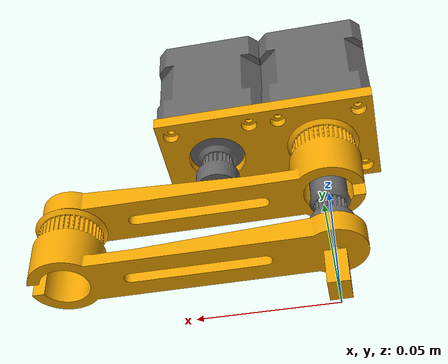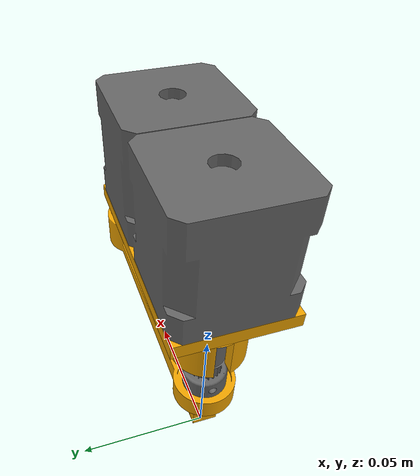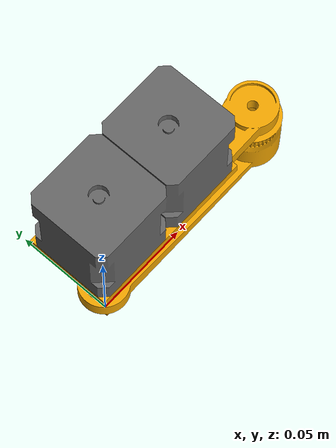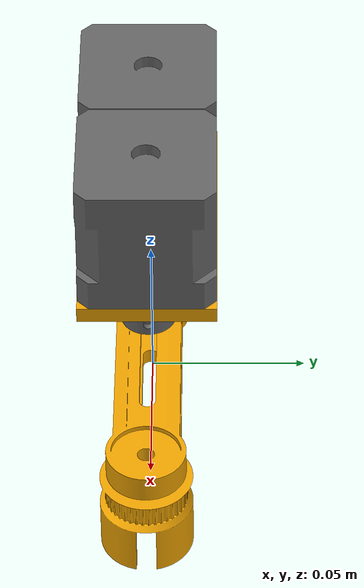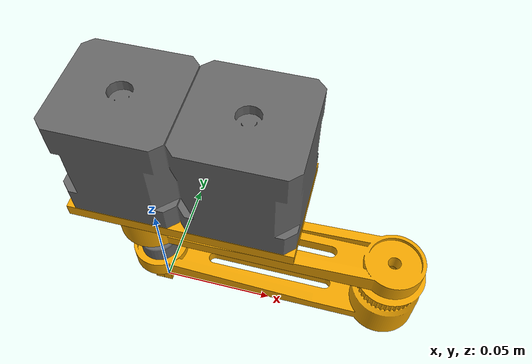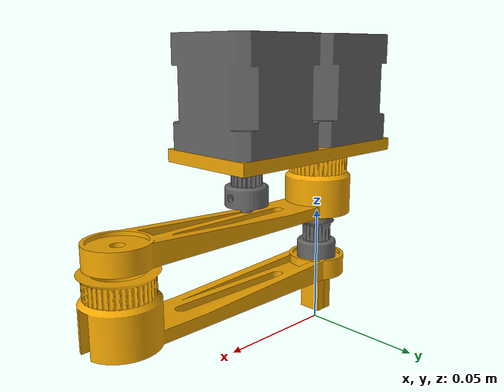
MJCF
<mujoco model="scara_arm">

    <worldbody>
        <!-- Root body with Z linear joint -->
        <body name="root" pos="0.0423 0 0.0">
            <!-- Z linear actuator joint -->
            <joint name="z_slide" type="slide" axis="0 0 2" limited="true" range="0 0.2" damping="1"/>

            <!-- Base body, moved inside root -->
            <body name="base" pos="0 0 0.08" euler="0 180 0">
                <geom type="mesh" mesh="steppers" rgba="0.4 0.4 0.4 1" contype="0" conaffinity="0"/>
                <geom type="mesh" mesh="base_stepper" rgba="0.95 0.65 0.0 1" contype="0" conaffinity="0"/>

                <!-- First arm -->
                <body name="arm1" pos="0.0423 0 0.03" euler="0 180 0">
                    <geom type="mesh" mesh="arm1" rgba="0.95 0.65 0.0 1" mass="5"/>
                    <joint name="joint1" type="hinge" axis="0 0 1" pos="0 0 0" damping="0.0001"/>

                    <!-- Second arm -->
                    <body name="arm2" pos="0.1 0 -0.028" euler="0 0 180">
                        <geom type="mesh" mesh="arm1" rgba="0.95 0.65 0.0 1" mass="5"/>
                        <joint name="joint2" type="hinge" axis="0 0 1" pos="0 0 0" damping="0.0001"/>

                        <!-- Gripper base and fingers -->
                        <body name="gripper_base" pos="0.1 0 0">
                            <joint name="gripper_rot" type="hinge" axis="0 0 1" damping="0.1"/>
                            <geom type="cylinder" size="0.002 0.001" rgba="0.95 0.65 0.0 1" mass="1" name="gripper_base"/>

                            <body name="left_finger" pos="-0.005 0 -0.01">
                                <joint name="left_slide" type="slide" axis="1 0 0" limited="true" range="-0.011 0" damping="0.1"/>
                                <geom type="box" size="0.002 0.005 0.007" pos="0.003 0 0" rgba="0.95 0.65 0.0 1" friction="5 0.01 0.01" mass="2.5" solimp="3 1 0.01" solref="0.01 1" condim="1" />
                            </body>

                            <body name="right_finger" pos="0.005 0 -0.01">
                                <joint name="right_slide" type="slide" axis="1 0 0" limited="true" range="0 0.011" damping="0.1"/>
                                <geom type="box" size="0.002 0.005 0.007" pos="-0.003 0 0" rgba="0.95 0.65 0.0 1" friction="5 0.01 0.01" mass="2.5" solimp="3 1 0.01" solref="0.01 1" condim="1" />
                            </body>
                        </body>
                    </body>
                </body>
            </body>
        </body>
    </worldbody>

    <asset>
        <mesh name="steppers" file="steppers.stl" scale="0.001 0.001 0.001"/>
        <mesh name="arm1" file="1st_arm.stl" scale="0.001 0.001 0.001"/>
        <mesh name="arm2" file="2d_arm.stl" scale="0.001 0.001 0.001"/>
        <mesh name="base_stepper" file="base_stepper.stl" scale="0.001 0.001 0.001"/>
    </asset>

    <equality>
        <joint name="gripper_symmetry" joint1="left_slide" joint2="right_slide" polycoef="0 -1"/>
    </equality>

    <actuator>
        <!-- Linear actuator on Z -->
        <position name="z_lift" joint="z_slide" ctrlrange="0.01 0.1" kp="30000" kv="10000" forcerange="-1000 1000"/>

        <velocity name="motor1" joint="joint1" ctrlrange="-3 3" kv="15" forcerange="-10000 10000"/>
        <velocity name="motor2" joint="joint2" ctrlrange="-3 3" kv="15" forcerange="-10000 10000"/>
        <position name="gripper_motor" joint="gripper_rot" ctrlrange="-3.14159 3.14159" kv="0.01" forcerange="-1000 1000" />
        <!-- Gripper finger actuator -->
        <motor name="gripper_open" joint="right_slide" forcerange="-10 10" ctrlrange="-10 10"/>
    </actuator>

    <sensor>
        <jointpos name="z_height" joint="z_slide"/>
        <jointpos name="angle_arm1" joint="joint1"/>
        <jointpos name="angle_arm2" joint="joint2"/>
        <jointpos name="angle_gripper" joint="gripper_rot"/>
        <jointpos name="right_slide_pos" joint="right_slide"/>
    </sensor>

</mujoco>
